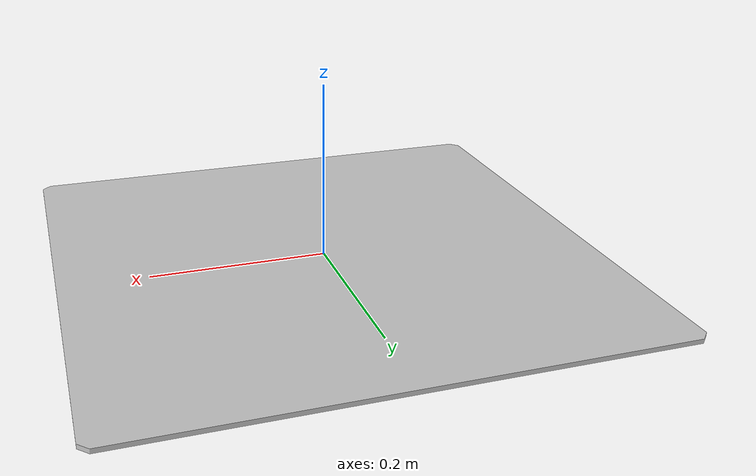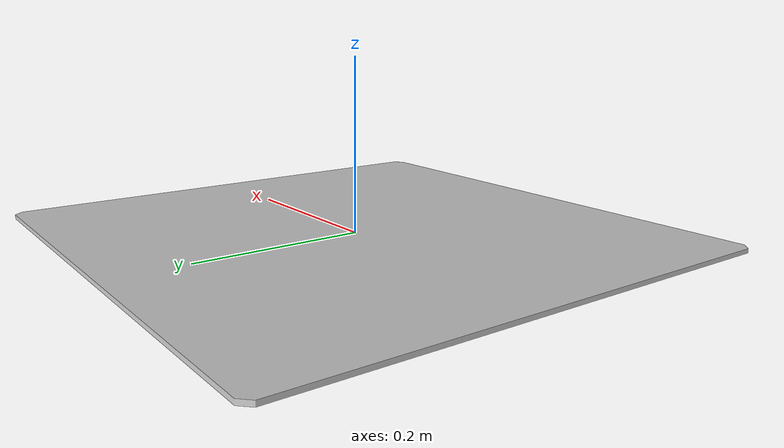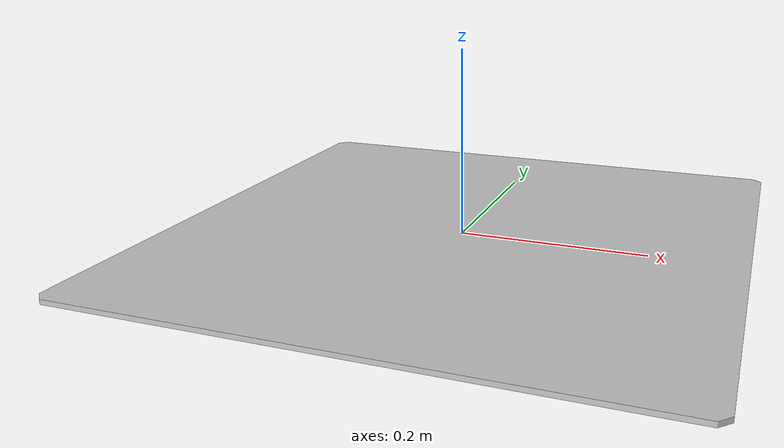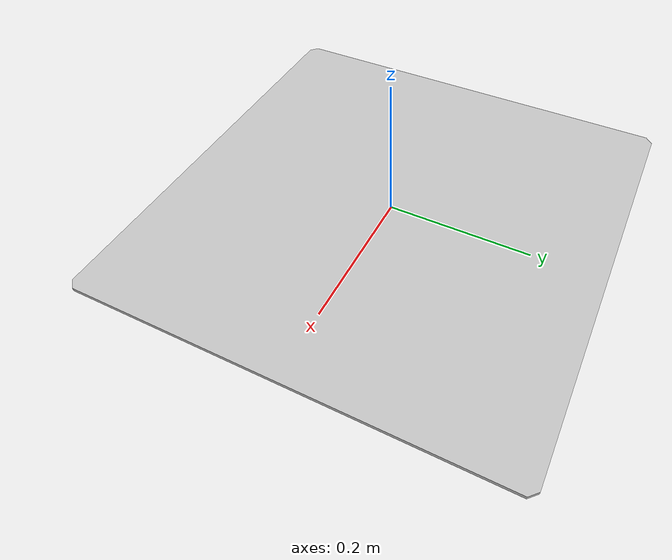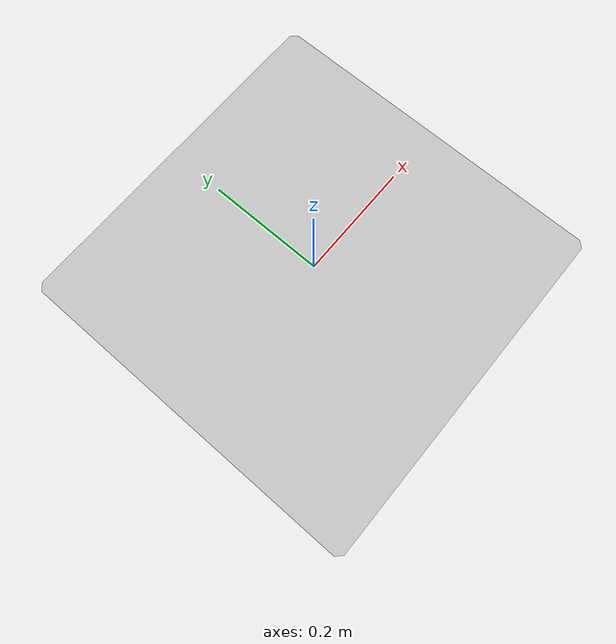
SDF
<sdf version='1.11'>
  <model name='omuni_nakamura_v9'>
    <link name='base_link'>
      <inertial>
        <pose>4.0444455887623261e-17 0 0.0025000000000000001 0 0 0</pose>
        <mass>14.12215</mass>
        <inertia>
          <ixx>0.423238</ixx>
          <ixy>0</ixy>
          <ixz>0</ixz>
          <iyy>0.423238</iyy>
          <iyz>0</iyz>
          <izz>0.846418</izz>
        </inertia>
      </inertial>
      <collision name='base_link_collision'>
        <pose>0 0 0 0 0 0</pose>
        <geometry>
          <mesh>
            <scale>0.001 0.001 0.001</scale>
            <uri>meshes/base_link.stl</uri>
          </mesh>
        </geometry>
      </collision>
      <visual name='base_link_visual'>
        <pose>0 0 0 0 0 0</pose>
        <geometry>
          <mesh>
            <scale>0.001 0.001 0.001</scale>
            <uri>meshes/base_link.stl</uri>
          </mesh>
        </geometry>
        <material>
          <diffuse>0.784313738 0.784313738 0.784313738 1</diffuse>
          <ambient>0.784313738 0.784313738 0.784313738 1</ambient>
        </material>
      </visual>
    </link>
    <plugin name='gz_ros2_control::GazeboSimROS2ControlPlugin' filename='libgz_ros2_control-system.so'>
      <parameters>/home/hao/Ubuntu_3/Robomech/ros2_ws_3_abu2027/install/gazebo_simulator/share/gazebo_simulator/config/controller_omuni_nakamura_v9.yaml</parameters>
    </plugin>
    <plugin name='gz::sim::systems::PosePublisher' filename='libgz-sim-pose-publisher-system.so'>
      <publish_link_pose>true</publish_link_pose>
      <publish_model_pose>true</publish_model_pose>
      <use_pose_vector_msg>true</use_pose_vector_msg>
      <update_frequency>50</update_frequency>
    </plugin>
  </model>
</sdf>
